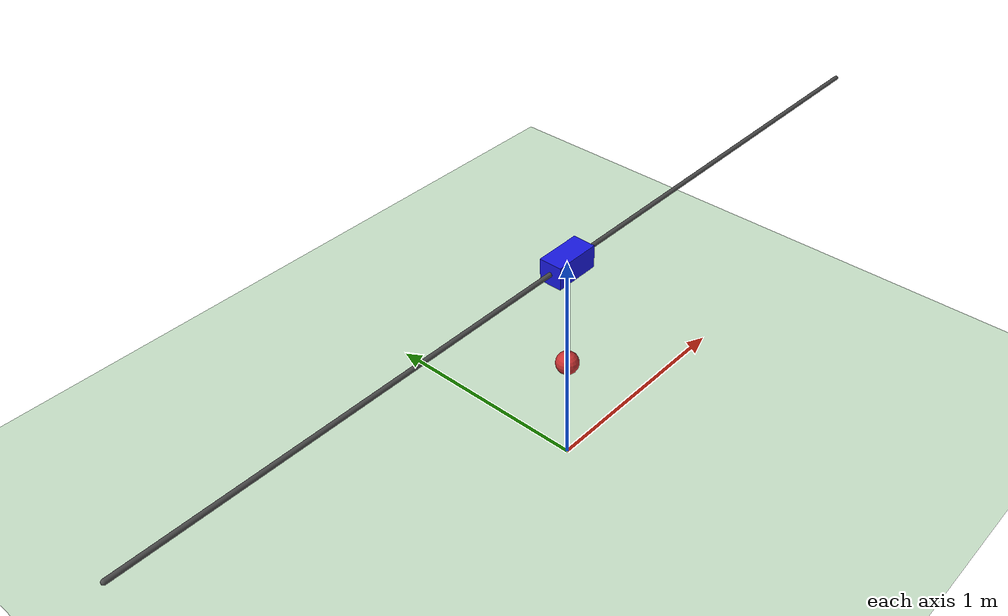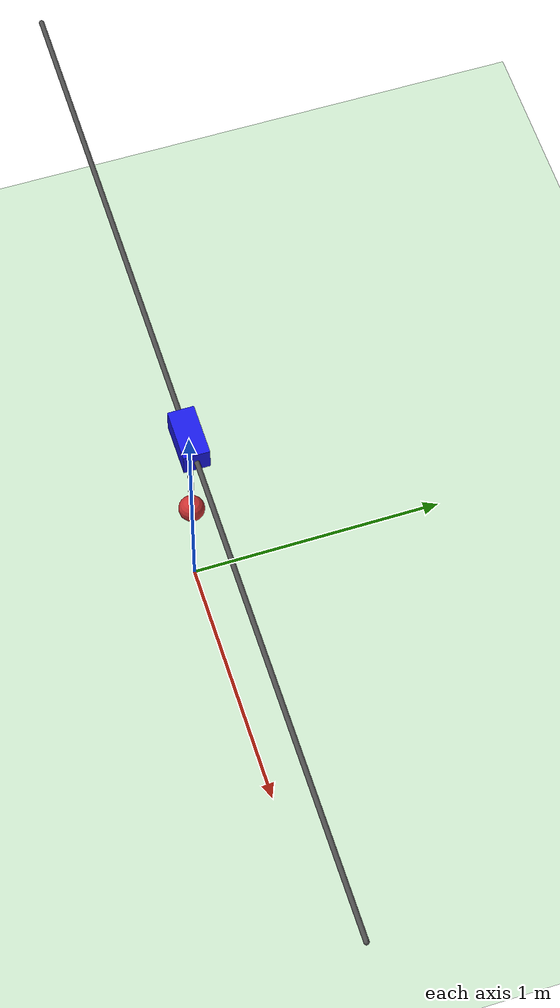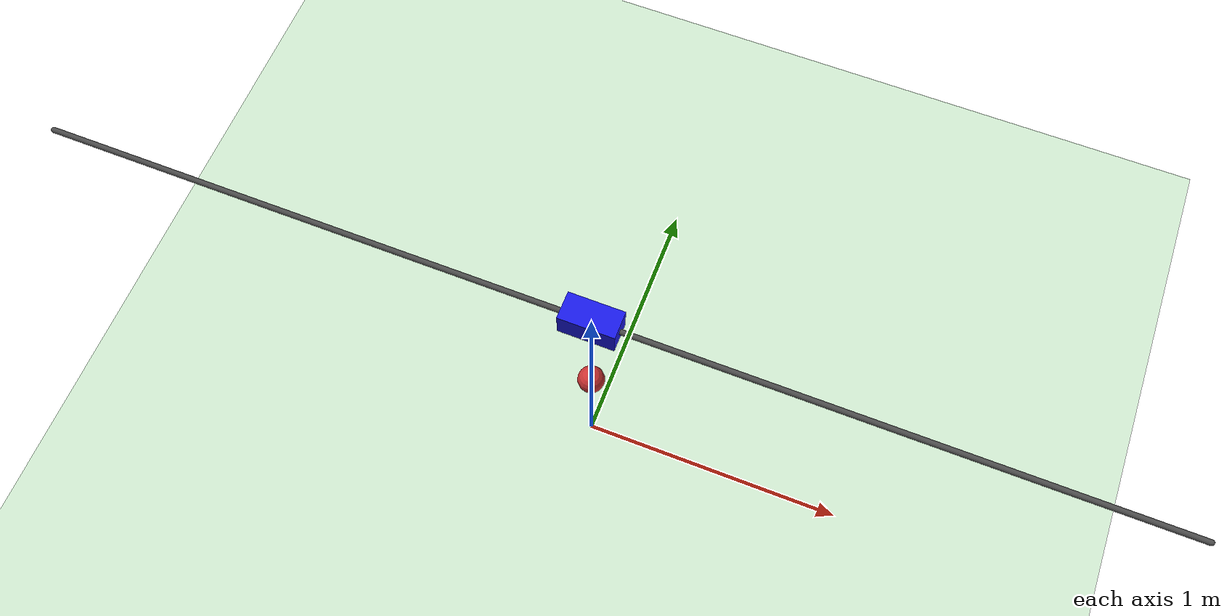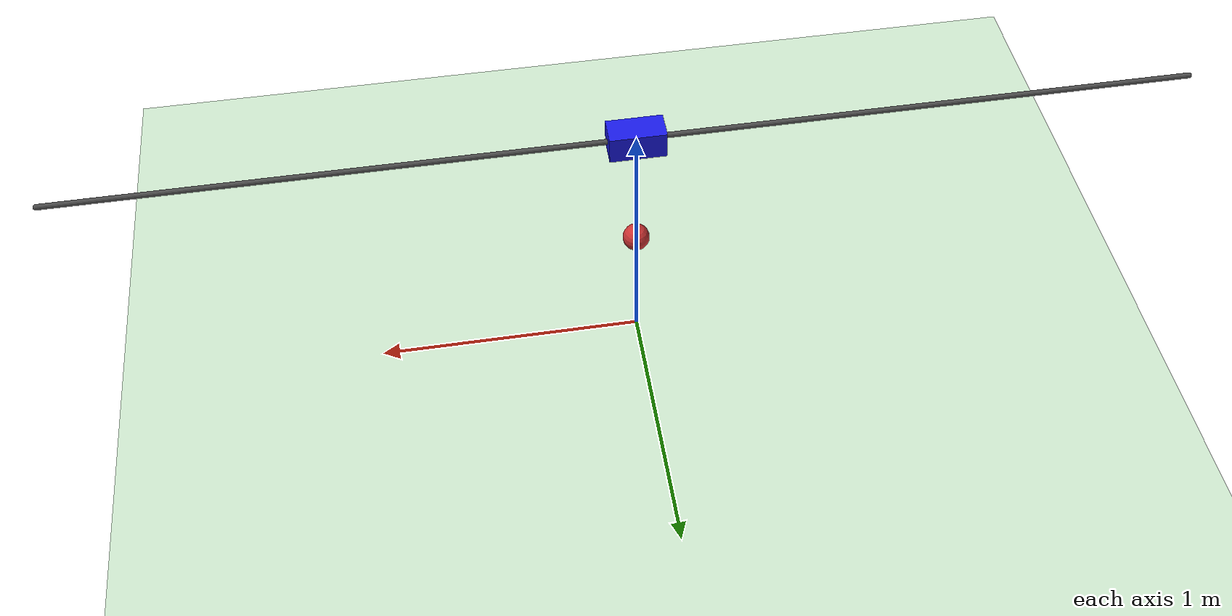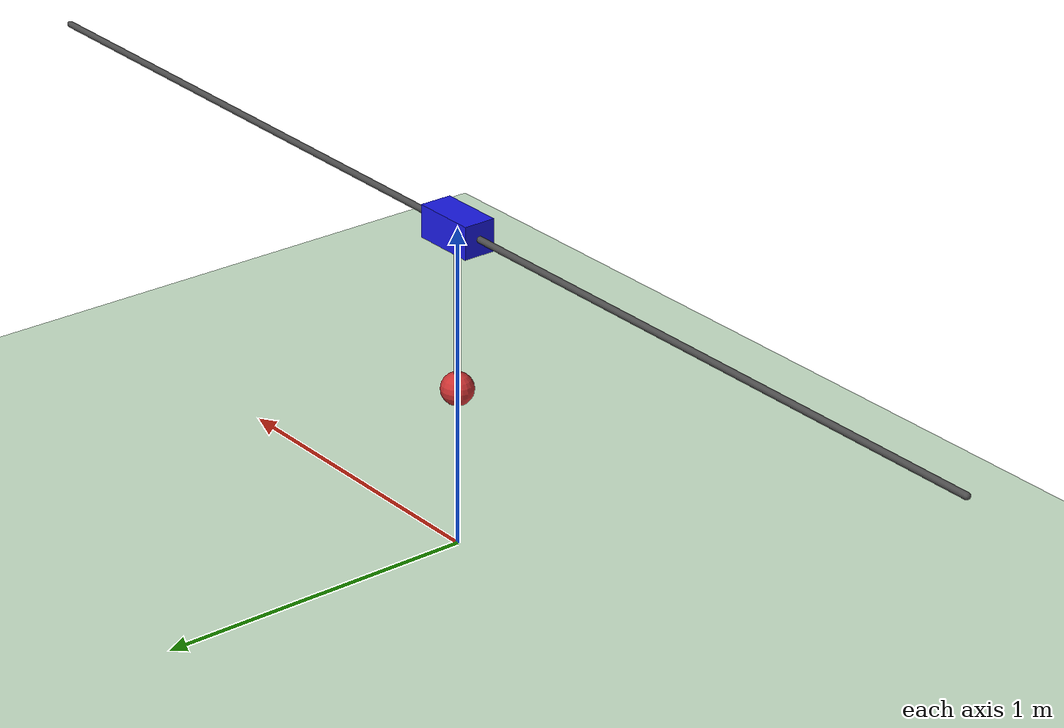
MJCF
<mujoco model="cartpole_energy_lqr">
    <option timestep="0.002" integrator="Euler" gravity="0 0 -9.81"/>

    <visual>
        <map znear="0.01" zfar="5"/>
    </visual>

    <worldbody>
        <light pos="0 -2 3" dir="0 1 -1" directional="true" castshadow="true"/>
        <geom name="floor" type="plane" size="2 2 0.1" rgba="0.8 0.9 0.8 1" contype="1" conaffinity="1"/>

        <camera name="cam_side" pos="0 -3 1.0" quat="0.7071 0.7071 0 0"/>

        <geom name="rail" type="capsule" fromto="-2 0 1.0  2 0 1.0" size="0.01" rgba="0.3 0.3 0.3 1" contype="0" conaffinity="0"/>

        <body name="cart" pos="0 0 1.0">
            <joint name="slider" type="slide" axis="1 0 0" damping="0.0"/>

            <inertial pos="0 0 0" mass="1.0" diaginertia="0.01 0.01 0.01"/>
            <geom name="cart_geom" type="box" size="0.1 0.05 0.05" rgba="0.1 0.1 0.9 1"/>

            <body name="pole" pos="0 0 0">
                <joint name="hinge" type="hinge" axis="0 1 0" pos="0 0 0" damping="0.0"/>

                <inertial pos="0 0 -0.5" mass="1.0" diaginertia="1e-6 1e-6 1e-6"/>

                <geom type="cylinder" fromto="0 0 0  0 0 -0.5" size="0.01" rgba="0.5 0.5 0.5 1" contype="0" conaffinity="0"/>

                <geom type="sphere" pos="0 0 -0.5" size="0.05" rgba="0.8 0.2 0.2 1"/>
            </body>
        </body>
    </worldbody>

    <actuator>
        <motor name="force_x" joint="slider" gear="1" ctrllimited="true" ctrlrange="-20.0 20.0"/>
    </actuator>

    <sensor>
        <jointpos joint="slider" name="sens_x"/>
        <jointvel joint="slider" name="sens_x_dot"/>
        <jointpos joint="hinge" name="sens_theta"/>
        <jointvel joint="hinge" name="sens_theta_dot"/>
    </sensor>
</mujoco>
